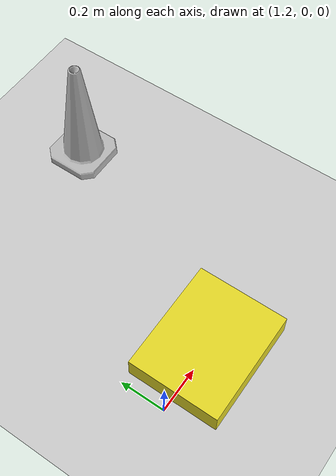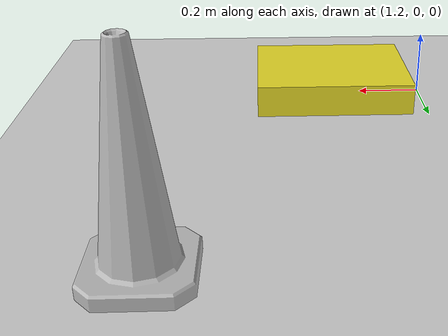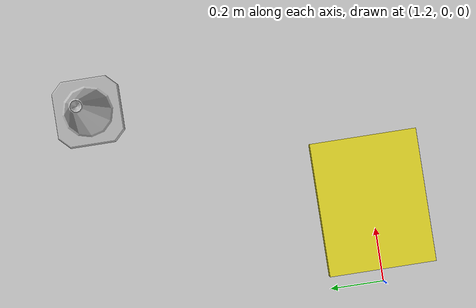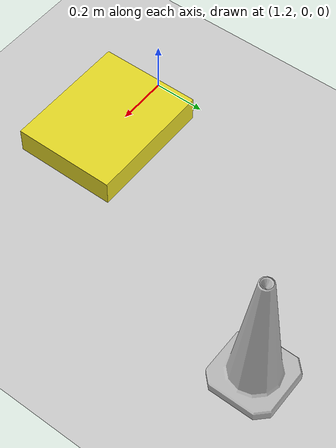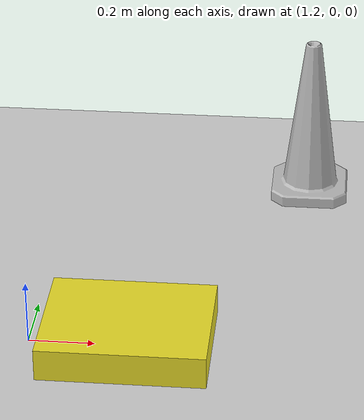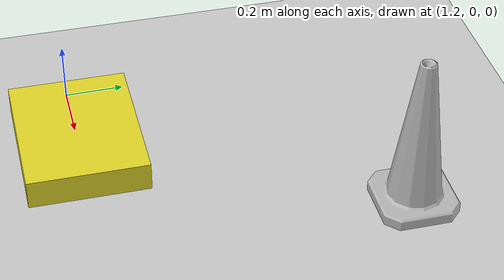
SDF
<?xml version="1.0" ?>
<sdf version="1.6">
  <world name="default">
    <gravity>0 0 -9.81</gravity>
  	<scene>
  		<shadows>0</shadows>
  		<sky>
  			<sunrise>7</sunrise>
  			<time>12</time>
  			<sunset>19</sunset>
  		</sky>
  	</scene>
    <physics type='ode'>
		  <real_time_update_rate>1000.0</real_time_update_rate>
		  <!-- max step size has to be a multiple of the desired task rate-->
		  <max_step_size>0.001</max_step_size>
		  <real_time_factor>1</real_time_factor>
    </physics>

    <!-- A global light source -->
    <include>
      <uri>model://sun</uri>
    </include>

    <!-- A ground plane -->
    <model name="ground_plane">
      <static>true</static>
      <link name="link">
        <collision name="collision">
		      <geometry>
		        <plane>
		          <normal>0 0 1</normal>
		          <size>100 100</size>
		        </plane>
		      </geometry>
		     	<surface>
				    <friction>
				      <ode>
				        <mu>1.0</mu>
				        <mu2>1.0</mu2>
				      </ode>
				    </friction>
				  </surface>
      	</collision>
		    <visual name="visual">
		      <cast_shadows>false</cast_shadows>
		      <geometry>
		        <plane>
		          <normal>0 0 1</normal>
		          <size>100 100</size>
		        </plane>
		      </geometry>
		      <material>
		        <script>
		          <uri>file://media/materials/scripts/gazebo.material</uri>
		          <name>Gazebo/Grey</name>
		        </script>
		      </material>
		    </visual>
    	</link>
    </model>

		<!-- Box -->
		<model name="box">
		  <static>true</static>
		  <pose>1.5 0.0 0.05 0 0 0</pose>
		  <link name="link">
		    <inertial>
		      <mass>2</mass>
		      <inertia>
		        <ixx>0.041666667</ixx>
		        <ixy>0</ixy>
		        <ixz>0</ixz>
		        <iyy>0.056666667</iyy>
		        <iyz>0</iyz>
		        <izz>0.068333333</izz>
		      </inertia>
		    </inertial>
		    <collision name="collision">
		      <geometry>
		        <box>
		          <size>0.5 0.4 0.1</size>
		        </box>
		      </geometry>
		      <surface>
		        <friction>
		          <ode>
		            <mu>1.0</mu>
		            <mu2>1.0</mu2>
		          </ode>
		        </friction>
		        <contact>
		          <ode>
		            <kp>10000000.0</kp>
		            <kd>1.0</kd>
		            <min_depth>0.001</min_depth>
		            <max_vel>0.1</max_vel>
		          </ode>
		        </contact>
		      </surface>
		    </collision>
		    <visual name="visual">
		      <geometry>
		        <box>
		          <size>0.5 0.4 0.1</size>
		        </box>
		      </geometry>
		      <material>
		        <script>
		          <uri>file://media/materials/scripts/gazebo.material</uri>
		          <name>Gazebo/Yellow</name>
		        </script>
		      </material>
		    </visual>
		  </link>
		</model>

		<!-- Construction Cone -->
		<model name="Construction Cone">
      <static>true</static>
      <pose>2.0 1.0 0.0 0 0 0</pose>
		  <link name="link">
		    <collision name="collision">
		      <geometry>
		        <mesh>
		          <scale>5 5 5</scale>
		          <uri>model://construction_cone/meshes/construction_cone.dae</uri>
		        </mesh>
		      </geometry>
		    </collision>
		    <visual name="visual">
		      <geometry>
		        <mesh>
		          <scale>5 5 5</scale>
		          <uri>model://construction_cone/meshes/construction_cone.dae</uri>
		        </mesh>
		      </geometry>
		    </visual>
		  </link>
		</model>

  </world>
</sdf>
